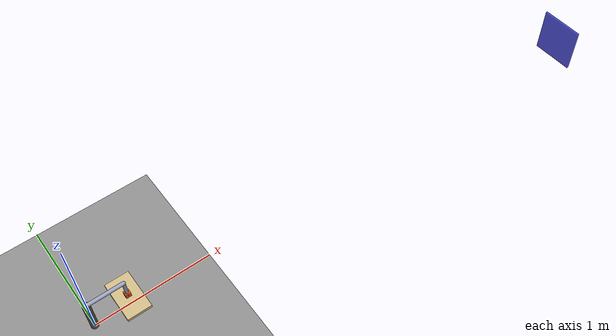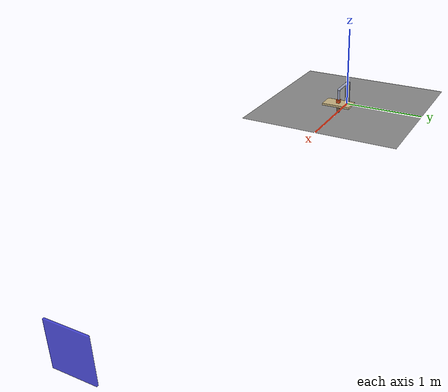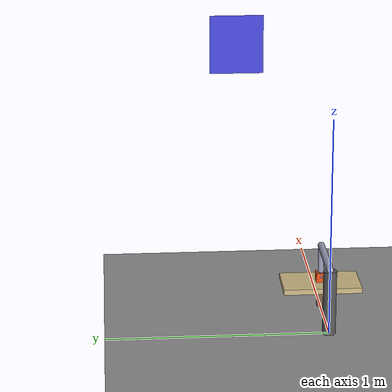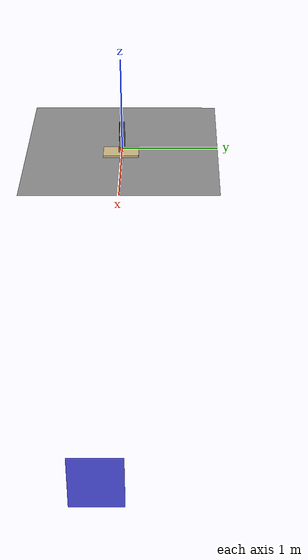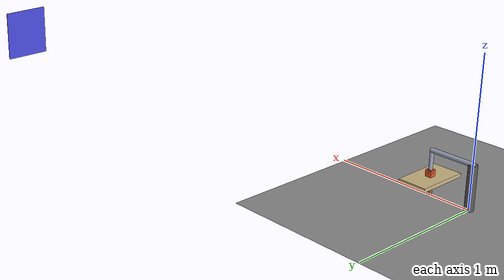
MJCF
<mujoco model="occlusion_manipulator">
  <compiler angle="radian"/>
  <option gravity="0 0 -9.81" timestep="0.002"/>

  <visual>
    <headlight ambient="0.45 0.45 0.45" diffuse="0.7 0.7 0.7" specular="0.05 0.05 0.05"/>
    <rgba haze="0.15 0.15 0.2 1"/>
    <global offwidth="800" offheight="600"/>
  </visual>

  <asset>
    <material name="table_mat" rgba="0.8 0.72 0.52 1"/>
    <material name="arm_mat"   rgba="0.60 0.62 0.72 1"/>
    <material name="obj_mat"   rgba="0.92 0.32 0.10 1"/>
  </asset>

  <worldbody>
    <light pos="0 0 1.5"   dir="0 0 -1"    directional="true" diffuse="0.6 0.6 0.6"/>
    <light pos="-1 -1 1.5" dir="1 1 -1"    directional="true" diffuse="0.4 0.4 0.4"/>
    <light pos="1  0.5 1"  dir="-1 -0.5 -1" directional="true" diffuse="0.3 0.3 0.3"/>
    <geom name="floor" type="plane" size="1 1 0.01" rgba="0.55 0.55 0.55 1"/>

    <!-- Table: top surface at z = 0.0 + 0.1125 + 0.0125 = 0.125 -->
    <!-- contype/conaffinity=0: table is visual only; fingertip must not collide  -->
    <!-- with the leg as the arm sweeps (leg is at X=0.3, arm passes through it). -->
    <body name="table" pos="0.3 0 0">
      <geom name="table_top" type="box"
            size="0.10 0.18 0.0125" pos="0 0 0.1125" material="table_mat"
            contype="0" conaffinity="0"/>
      <!-- Leg: from floor (z=0) to underside of table_top (z=0.10).
           half-height=0.05 → centre z=0.05 → top z=0.10, bottom z=0.00 -->
      <geom name="table_leg" type="box"
            size="0.015 0.015 0.05" pos="0 0 0.05" rgba="0.50 0.40 0.30 1"
            contype="0" conaffinity="0"/>
    </body>

    <!-- Object: mocap body, center at z=0.147 (table_top + box half-height 0.022) -->
    <!-- Mocap initial pos at center (obj_loc=1) -->
    <body name="object" pos="0.3 0 0.147" mocap="true">
      <geom name="obj_geom" type="box" size="0.022 0.022 0.022" material="obj_mat"
            solimp="0.99 0.99 0.01" solref="0.01 1"/>
    </body>

    <!-- Occluder: mocap body, invisible to contacts (contype=0) -->
    <!-- Default far away; moved to (0.15, 0, 0.25) when occlusion is active -->
    <body name="occluder" pos="5.0 0 0" mocap="true">
      <geom name="occ_geom" type="box" size="0.008 0.20 0.22"
            rgba="0.20 0.20 0.90 0.85" contype="0" conaffinity="0"/>
    </body>

    <!-- Arm base pillar (fixed) -->
    <body name="arm_base" pos="0 0 0">
      <geom type="cylinder" size="0.030 0.15" pos="0 0 0.15" rgba="0.35 0.35 0.35 1"/>

      <!-- Shoulder: hinge around Z (vertical), sweeps arm in XY plane -->
      <body name="shoulder_body" pos="0 0 0.30">
        <joint name="shoulder" type="hinge" axis="0 0 1" range="-0.50 0.50"/>

        <!-- Upper arm: horizontal capsule along +X, length 0.30m -->
        <geom name="upper_arm" type="capsule"
              fromto="0 0 0 0.30 0 0" size="0.016" material="arm_mat"/>

        <!-- Elbow: rigid body at tip of upper arm -->
        <body name="elbow_body" pos="0.30 0 0">
          <!-- Lower arm: vertical capsule along -Z, length 0.148m -->
          <!-- Fingertip center z = 0.30 - 0.148 = 0.152.                           -->
          <!-- Sphere bottom    z = 0.152 - 0.023 = 0.129 (4mm above table=0.125).  -->
          <!-- Object center    z = 0.147; sphere overlaps [0.129,0.175] → contact. -->
          <geom name="lower_arm" type="capsule"
                fromto="0 0 0 0 0 -0.148" size="0.013" material="arm_mat"/>

          <!-- Fingertip: sphere at bottom of lower arm -->
          <!-- z=-0.148: 4mm clearance above table (soft-contact zone safe).        -->
          <site name="fingertip" pos="0 0 -0.148" size="0.023"/>
          <geom name="fingertip_geom" type="sphere" size="0.023" pos="0 0 -0.148"
                material="arm_mat" solimp="0.99 0.99 0.01" solref="0.01 1"/>
        </body>
      </body>
    </body>

    <!-- Cameras -->
    <!-- main_camera: frontal view, sees object and potential occluder -->
    <camera name="main_camera" pos="0.3 -0.70 0.50"
            xyaxes="1 0 0  0.18 0.12 1"/>
    <!-- top_camera: bird-eye view for debugging -->
    <camera name="top_camera" pos="0.3 0 1.00"
            xyaxes="1 0 0  0 1 0"/>
    <camera name="close_camera" pos="0.3 -0.38 0.32"
            xyaxes="1 0 0  0 0.28 1"/>
    <camera name="side_camera" pos="0.68 0.0 0.35"
            xyaxes="0 1 0  -0.45 0 1"/>
  </worldbody>

  <actuator>
    <!-- Position servo on shoulder only -->
    <position name="shoulder_act" joint="shoulder"
              kp="40" dampratio="1" forcerange="-8 8"/>
  </actuator>

  <sensor>
    <!-- Touch sensor at fingertip site -->
    <touch name="fingertip_touch" site="fingertip"/>
  </sensor>

</mujoco>
